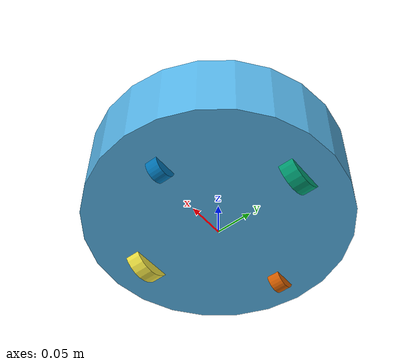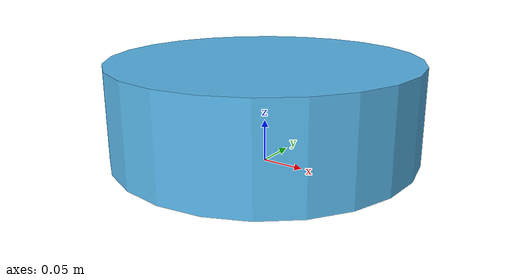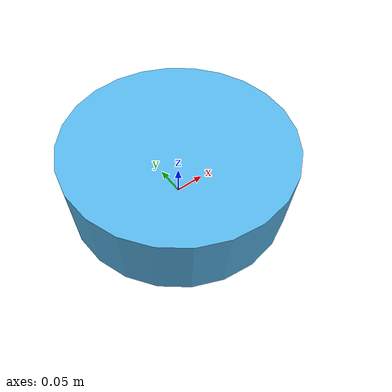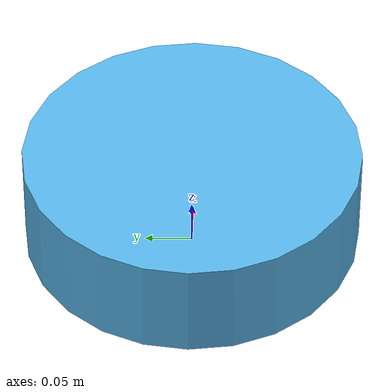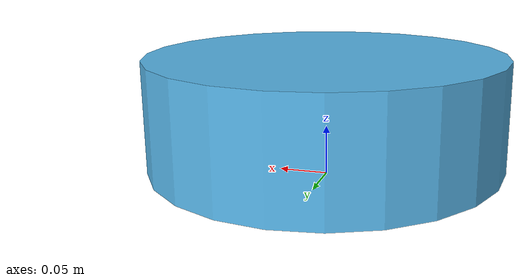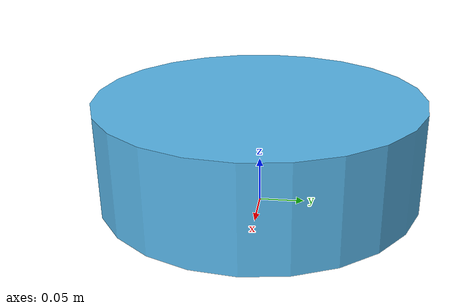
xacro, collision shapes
<?xml version="1.0"?>
<!--
    - Base      : kobuki
    - Stacks    : hexagons
    - 3d Sensor : kinect
-->
<robot name="kobuki" xmlns:xacro="http://ros.org/wiki/xacro" >

  <xacro:arg name="lidar" default="false" />
  <xacro:arg name="camera" default="false" />
  <xacro:arg name="structure" default="false" />
  <xacro:arg name="lidar_range" default="3.0" />

  <xacro:arg name="namespace" default="" />
  <xacro:arg name="tf_namespace" default="" />
  <xacro:arg name="gazebo" default="false" />

  <xacro:include filename="$(find easynav_playground_kobuki)/urdf/kobuki_base.urdf.xacro" />
  <xacro:include filename="$(find easynav_playground_kobuki)/urdf/turtlebot_common_library.urdf.xacro" />
  <xacro:kobuki_base namespace="$(arg namespace)"/>

  <xacro:if value="$(arg structure)">
    <xacro:include filename="$(find easynav_playground_kobuki)/urdf/stacks/hexagons.urdf.xacro"/>
    <xacro:include filename="$(find easynav_playground_kobuki)/urdf/stacks/circles.urdf.xacro"/>
    <xacro:stack_hexagons parent="$(arg namespace)base_link" namespace="$(arg namespace)"/>
    <xacro:turtlebot_standoff_1in number="0" parent="$(arg namespace)base_link" x_loc="0.120" y_loc="0.082" z_loc="0.09" namespace="$(arg namespace)"/>
    <xacro:turtlebot_standoff_1in number="1" parent="$(arg namespace)base_link" x_loc="0.055" y_loc="0.120" z_loc="0.09" namespace="$(arg namespace)"/>
    <xacro:turtlebot_standoff_1in number="2" parent="$(arg namespace)base_link" x_loc="-0.055" y_loc="0.120" z_loc="0.09" namespace="$(arg namespace)"/>
    <xacro:turtlebot_standoff_1in number="3" parent="$(arg namespace)base_link" x_loc="0.120" y_loc="-0.082" z_loc="0.09" namespace="$(arg namespace)"/>
    <xacro:turtlebot_standoff_1in number="4" parent="$(arg namespace)base_link" x_loc="0.055" y_loc="-0.120" z_loc="0.09" namespace="$(arg namespace)"/>
    <xacro:turtlebot_standoff_1in number="5" parent="$(arg namespace)base_link" x_loc="-0.055" y_loc="-0.120" z_loc="0.09" namespace="$(arg namespace)"/>
    <xacro:turtlebot_standoff_2in number="0" parent="$(arg namespace)base_link" x_loc="0.0381" y_loc="0.1505" z_loc="0.1340" namespace="$(arg namespace)"/>
    <xacro:turtlebot_standoff_2in number="1" parent="$(arg namespace)base_link" x_loc="0.0381" y_loc="-0.1505" z_loc="0.1340" namespace="$(arg namespace)"/>
    <xacro:turtlebot_standoff_2in number="2" parent="$(arg namespace)base_link" x_loc="-0.0381" y_loc="0.1505" z_loc="0.1340" namespace="$(arg namespace)"/>
    <xacro:turtlebot_standoff_2in number="3" parent="$(arg namespace)base_link" x_loc="-0.0381" y_loc="-0.1505" z_loc="0.1340" namespace="$(arg namespace)"/>
    <xacro:turtlebot_standoff_8in number="0" parent="$(arg namespace)base_link" x_loc="0.0381" y_loc="0.1505" z_loc="0.1900" namespace="$(arg namespace)"/>
    <xacro:turtlebot_standoff_8in number="1" parent="$(arg namespace)base_link" x_loc="0.0381" y_loc="-0.1505" z_loc="0.1900" namespace="$(arg namespace)"/>
    <xacro:turtlebot_standoff_8in number="2" parent="$(arg namespace)base_link" x_loc="-0.0381" y_loc="0.1505" z_loc="0.1900" namespace="$(arg namespace)"/>
    <xacro:turtlebot_standoff_8in number="3" parent="$(arg namespace)base_link" x_loc="-0.0381" y_loc="-0.1505" z_loc="0.1900" namespace="$(arg namespace)"/>
  </xacro:if>

  <xacro:if value="$(arg lidar)">
    <xacro:include filename="$(find easynav_playground_kobuki)/urdf/sensors/lidar.urdf.xacro"/>
    <xacro:sensor_lidar namespace="$(arg namespace)"/>
  </xacro:if>

  <xacro:if value="$(arg camera)">
    <xacro:include filename="$(find easynav_playground_kobuki)/urdf/sensors/asus_xtion_pro.urdf.xacro"/>
    <xacro:sensor_asus_xtion_pro parent="$(arg namespace)base_link" namespace="$(arg namespace)"/>
  </xacro:if>

  <xacro:if value="$(arg gazebo)">
    <xacro:include filename="$(find easynav_playground_kobuki)/urdf/kobuki_gazebo.urdf.xacro"/>
    <xacro:kobuki_gazebo lidar="$(arg lidar)" camera="$(arg camera)" namespace="$(arg namespace)" tf_namespace="$(arg tf_namespace)" lidar_range="$(arg lidar_range)"/>
  </xacro:if>

</robot>

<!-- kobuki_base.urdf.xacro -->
<robot name="kobuki" xmlns:xacro="http://ros.org/wiki/xacro">
  <xacro:include filename="$(find easynav_playground_kobuki)/urdf/common_properties.urdf.xacro"/>

  <!-- Kobuki -->
  <xacro:macro name="kobuki_base" params = "namespace">
    <link name="$(arg namespace)base_footprint"/>
    <joint name="$(arg namespace)base_joint" type="fixed">
      <origin xyz="0 0 0.0102" rpy="0 0 0" />
      <parent link="$(arg namespace)base_footprint"/>
      <child link="$(arg namespace)base_link" />
    </joint>
    <link name="$(arg namespace)base_link">
      <visual>
        <geometry>
          <!-- new mesh -->
          <mesh filename="file://$(find easynav_playground_kobuki)/meshes/main_body.dae" />
        </geometry>
        <origin xyz="0.001 0 0.05199" rpy="0 0 0"/>
      </visual>
      <collision name="base">
        <geometry>
          <cylinder length="0.10938" radius="0.178"/>
        </geometry>
        <origin xyz="0.0 0 0.05949" rpy="0 0 0"/>
      </collision>
      <inertial>
        <!-- COM experimentally determined -->
        <origin xyz="0.01 0 0"/>
        <mass value="2.4"/> <!-- 2.4/2.6 kg for small/big battery pack -->
        <inertia ixx="0.019995" ixy="0.0" ixz="0.0"
                 iyy="0.019995" iyz="0.0"
                 izz="0.03675" />
      </inertial>
    </link>

    <joint name="$(arg namespace)wheel_left_joint" type="continuous">
      <parent link="$(arg namespace)base_link"/>
      <child link="$(arg namespace)wheel_left_link"/>
      <origin xyz="0.00 ${0.25/2} 0.0250" rpy="${-M_PI/2} 0 0"/>
      <axis xyz="0 0 1"/>
    </joint>
    <link name="$(arg namespace)wheel_left_link">
      <visual>
        <geometry>
          <mesh filename="file://$(find easynav_playground_kobuki)/meshes/wheel.dae"/>
        </geometry>
        <origin xyz="0 0 0" rpy="0 0 0"/>
      </visual>
      <collision>
        <geometry>
          <cylinder length="0.0206" radius="0.035"/>
        </geometry>
        <origin rpy="0 0 0" xyz="0 0 0"/>
      </collision>
      <inertial>
        <mass value="0.01" />
        <origin xyz="0 0 0" />
        <inertia ixx="0.001" ixy="0.0" ixz="0.0"
                 iyy="0.001" iyz="0.0"
                 izz="0.001" />
      </inertial>
    </link>

    <joint name="$(arg namespace)wheel_right_joint" type="continuous">
      <parent link="$(arg namespace)base_link"/>
      <child link="$(arg namespace)wheel_right_link"/>
      <origin xyz="0.00 -${0.25/2} 0.0250" rpy="${-M_PI/2} 0 0"/>
      <axis xyz="0 0 1"/>
    </joint>
    <link name="$(arg namespace)wheel_right_link">
      <visual>
        <geometry>
          <mesh filename="file://$(find easynav_playground_kobuki)/meshes/wheel.dae"/>
        </geometry>
        <origin xyz="0 0 0" rpy="0 0 0"/>
      </visual>
      <collision>
        <geometry>
          <cylinder length="0.0206" radius="0.035"/>
        </geometry>
        <origin rpy="0 0 0" xyz="0 0 0"/>
      </collision>
      <inertial>
        <mass value="0.01" />
        <origin xyz="0 0 0" />
        <inertia ixx="0.001" ixy="0.0" ixz="0.0"
                 iyy="0.001" iyz="0.0"
                 izz="0.001" />
      </inertial>
    </link>

    <joint name="$(arg namespace)caster_front_joint" type="fixed">
      <parent link="$(arg namespace)base_link"/>
      <child link="$(arg namespace)caster_front_link"/>
      <origin xyz="0.115 0.0 0.007" rpy="${-M_PI/2} 0 0"/>
    </joint>
    <link name="$(arg namespace)caster_front_link">
      <collision>
        <geometry>
          <cylinder length="0.0176" radius="0.017"/>
        </geometry>
        <origin rpy="0 0 0" xyz="0 0 0"/>
      </collision>
      <inertial>
        <mass value="0.01" />
        <origin xyz="0 0 0" />
        <inertia ixx="0.001" ixy="0.0" ixz="0.0"
                 iyy="0.001" iyz="0.0"
                 izz="0.001" />
      </inertial>
    </link>

    <joint name="$(arg namespace)caster_back_joint" type="fixed">
      <parent link="$(arg namespace)base_link"/>
      <child link="$(arg namespace)caster_back_link"/>
      <origin xyz="-0.135 0.0 0.009" rpy="${-M_PI/2} 0 0"/>
    </joint>
    <link name="$(arg namespace)caster_back_link">
      <collision>
        <geometry>
          <cylinder length="0.0176" radius="0.017"/>
        </geometry>
        <origin rpy="0 0 0" xyz="0 0 0"/>
      </collision>
      <inertial>
        <mass value="0.01" />
        <origin xyz="0 0 0" />
        <inertia ixx="0.001" ixy="0.0" ixz="0.0"
                 iyy="0.001" iyz="0.0"
                 izz="0.001" />
      </inertial>
    </link>

    <!-- Kobuki's sensors -->
    <joint name="$(arg namespace)gyro_joint" type="fixed">
      <axis xyz="0 1 0"/>
      <origin xyz="0.056 0.062 0.0202" rpy="0 0 0"/>
      <parent link="$(arg namespace)base_link"/>
      <child link="$(arg namespace)gyro_link"/>
    </joint>
    <link name="$(arg namespace)gyro_link">
      <inertial>
        <mass value="0.001"/>
        <origin xyz="0 0 0" rpy="0 0 0"/>
        <inertia ixx="0.0001" ixy="0" ixz="0"
                 iyy="0.000001" iyz="0"
                 izz="0.0001"/>
      </inertial>
    </link>

    <joint name="$(arg namespace)cliff_sensor_left_joint" type="fixed">
      <origin xyz="0.08734 0.13601 0.0214" rpy="0 ${M_PI/2} 0" />
      <parent link="$(arg namespace)base_link"/>
      <child link="$(arg namespace)cliff_sensor_left_link" />
    </joint>
    <link name="$(arg namespace)cliff_sensor_left_link">
      <inertial>
        <mass value="0.0001" />
        <origin xyz="0 0 0" />
        <inertia ixx="0.0001" ixy="0.0" ixz="0.0"
                 iyy="0.0001" iyz="0.0"
                 izz="0.0001" />
      </inertial>
    </link>

    <joint name="$(arg namespace)cliff_sensor_right_joint" type="fixed">
      <origin xyz="0.085 -0.13601 0.0214" rpy="0 ${M_PI/2} 0" />
      <parent link="$(arg namespace)base_link"/>
      <child link="$(arg namespace)cliff_sensor_right_link" />
    </joint>
    <link name="$(arg namespace)cliff_sensor_right_link">
      <inertial>
        <mass value="0.0001" />
        <origin xyz="0 0 0" />
        <inertia ixx="0.0001" ixy="0.0" ixz="0.0"
                 iyy="0.0001" iyz="0.0"
                 izz="0.0001" />
      </inertial>
    </link>

    <joint name="$(arg namespace)cliff_sensor_front_joint" type="fixed">
      <origin xyz="0.156 0.00 0.0214" rpy="0 ${M_PI/2} 0" />
      <parent link="$(arg namespace)base_link"/>
      <child link="$(arg namespace)cliff_sensor_front_link" />
    </joint>
    <link name="$(arg namespace)cliff_sensor_front_link">
      <inertial>
        <mass value="0.0001" />
        <origin xyz="0 0 0" />
        <inertia ixx="0.0001" ixy="0.0" ixz="0.0"
                 iyy="0.0001" iyz="0.0"
                 izz="0.0001" />
      </inertial>
    </link>

  </xacro:macro>
</robot>
